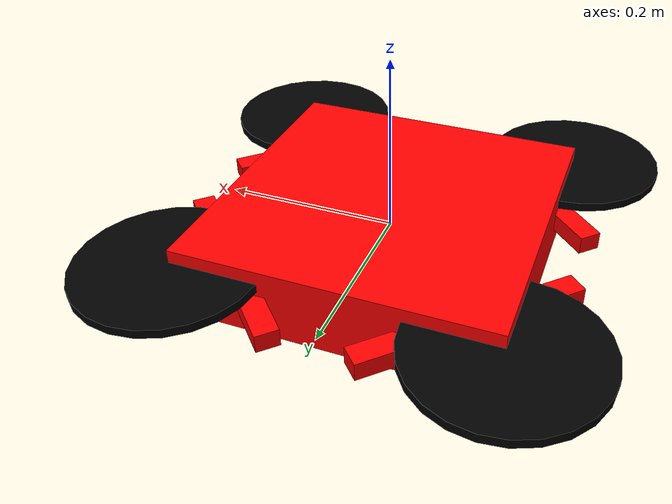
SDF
<?xml version="1.0" ?>
<sdf version="1.6">
  <model name="drone_demo">
    <link name="base_link">
      <pose>0 0 0 0 0 0</pose>
      <inertial>
        <mass>1.5</mass>
        <inertia>
          <ixx>0.0347</ixx><iyy>0.0347</iyy><izz>0.0617</izz>
          <ixy>0</ixy><ixz>0</ixz><iyz>0</iyz>
        </inertia>
      </inertial>

      <collision name="body_col">
        <geometry>
          <box><size>0.35 0.35 0.08</size></box>
        </geometry>
      </collision>

      <!-- Cuerpo central — ROJO -->
      <visual name="body_vis">
        <geometry>
          <box><size>0.35 0.35 0.08</size></box>
        </geometry>
        <material>
          <ambient>1 0 0 1</ambient>
          <diffuse>1 0 0 1</diffuse>
          <specular>0.1 0.1 0.1 1</specular>
        </material>
      </visual>

      <!-- Brazo FR -->
      <visual name="arm_fr">
        <pose>0.13 -0.13 0 0 0 0.785</pose>
        <geometry><box><size>0.25 0.025 0.02</size></box></geometry>
        <material>
          <ambient>1 0 0 1</ambient>
          <diffuse>1 0 0 1</diffuse>
        </material>
      </visual>

      <!-- Brazo FL -->
      <visual name="arm_fl">
        <pose>0.13 0.13 0 0 0 -0.785</pose>
        <geometry><box><size>0.25 0.025 0.02</size></box></geometry>
        <material>
          <ambient>1 0 0 1</ambient>
          <diffuse>1 0 0 1</diffuse>
        </material>
      </visual>

      <!-- Brazo RR -->
      <visual name="arm_rr">
        <pose>-0.13 -0.13 0 0 0 -0.785</pose>
        <geometry><box><size>0.25 0.025 0.02</size></box></geometry>
        <material>
          <ambient>1 0 0 1</ambient>
          <diffuse>1 0 0 1</diffuse>
        </material>
      </visual>

      <!-- Brazo RL -->
      <visual name="arm_rl">
        <pose>-0.13 0.13 0 0 0 0.785</pose>
        <geometry><box><size>0.25 0.025 0.02</size></box></geometry>
        <material>
          <ambient>1 0 0 1</ambient>
          <diffuse>1 0 0 1</diffuse>
        </material>
      </visual>

      <!-- Helice FR — NEGRO -->
      <visual name="prop_fr">
        <pose>0.175 -0.175 0.02 0 0 0</pose>
        <geometry><cylinder><radius>0.1</radius><length>0.01</length></cylinder></geometry>
        <material>
          <ambient>0 0 0 1</ambient>
          <diffuse>0 0 0 1</diffuse>
        </material>
      </visual>

      <!-- Helice FL — NEGRO -->
      <visual name="prop_fl">
        <pose>0.175 0.175 0.02 0 0 0</pose>
        <geometry><cylinder><radius>0.1</radius><length>0.01</length></cylinder></geometry>
        <material>
          <ambient>0 0 0 1</ambient>
          <diffuse>0 0 0 1</diffuse>
        </material>
      </visual>

      <!-- Helice RR — NEGRO -->
      <visual name="prop_rr">
        <pose>-0.175 -0.175 0.02 0 0 0</pose>
        <geometry><cylinder><radius>0.1</radius><length>0.01</length></cylinder></geometry>
        <material>
          <ambient>0 0 0 1</ambient>
          <diffuse>0 0 0 1</diffuse>
        </material>
      </visual>

      <!-- Helice RL — NEGRO -->
      <visual name="prop_rl">
        <pose>-0.175 0.175 0.02 0 0 0</pose>
        <geometry><cylinder><radius>0.1</radius><length>0.01</length></cylinder></geometry>
        <material>
          <ambient>0 0 0 1</ambient>
          <diffuse>0 0 0 1</diffuse>
        </material>
      </visual>

    </link>
  </model>
</sdf>
